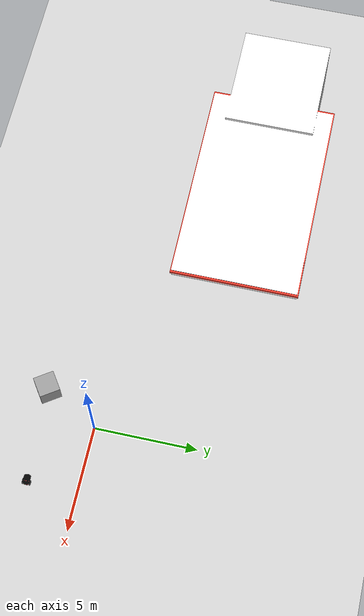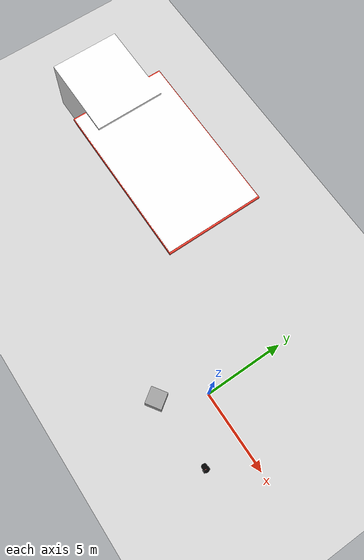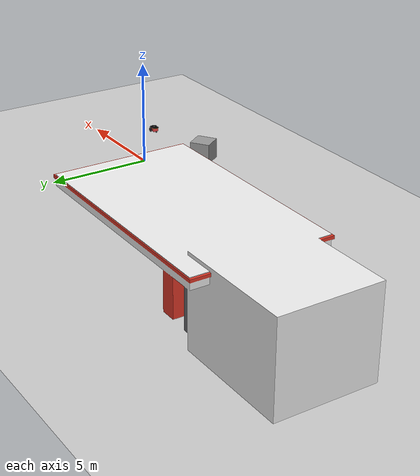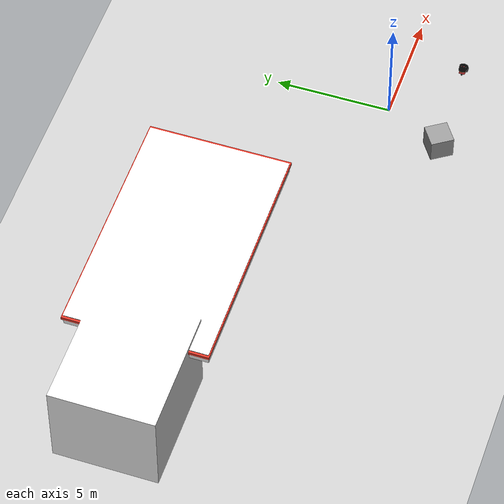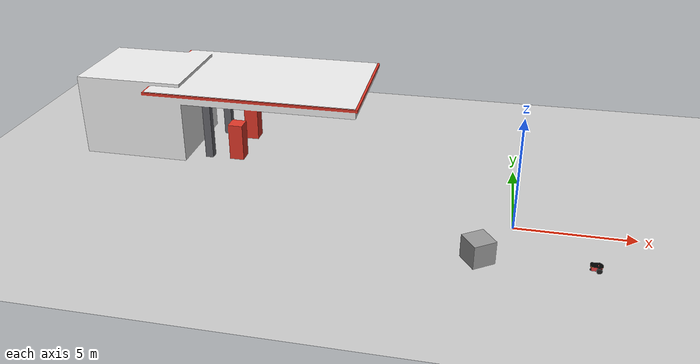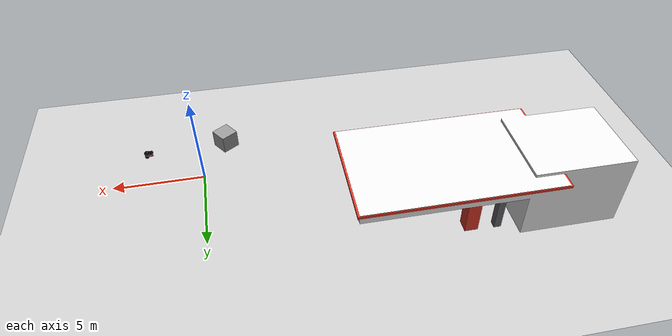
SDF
<sdf version="1.6">
 <world name="default">
  <plugin name="ros_interface_plugin" filename="librotors_gazebo_ros_interface_plugin.so"/>
  <light name="sun" type="directional">
   <pose>0 0 10 0 -0 0</pose>
   <diffuse>0.8 0.8 0.8 1</diffuse>
   <specular>0.1 0.1 0.1 1</specular>
   <attenuation>
    <range>1000</range>
    <constant>0.9</constant>
    <linear>0.01</linear>
    <quadratic>0.001</quadratic>
   </attenuation>
   <direction>-0.5 0.5 -1</direction>
  </light>
  <model name="ground_plane">
   <static>1</static>
   <link name="link">
    <collision name="collision">
     <geometry><plane><normal>0 0 1</normal><size>100 100</size></plane></geometry>
     <surface><friction><ode><mu>100</mu><mu2>50</mu2></ode></friction></surface>
    </collision>
    <visual name="visual">
     <cast_shadows>0</cast_shadows>
     <geometry><plane><normal>0 0 1</normal><size>100 100</size></plane></geometry>
     <material>
      <script><uri>file://media/materials/scripts/gazebo.material</uri><name>Gazebo/Grey</name></script>
     </material>
    </visual>
   </link>
  </model>
  <gravity>0 0 -9.8</gravity>
  <magnetic_field>6e-06 2.3e-05 -4.2e-05</magnetic_field>
  <atmosphere type="adiabatic"/>
  <physics name="default_physics" default="0" type="ode">
   <max_step_size>0.001</max_step_size>
   <real_time_factor>1</real_time_factor>
   <real_time_update_rate>1000</real_time_update_rate>
  </physics>
  <scene><ambient>0.4 0.4 0.4 1</ambient><background>0.7 0.7 0.7 1</background><shadows>1</shadows></scene>
  <spherical_coordinates>
   <surface_model>EARTH_WGS84</surface_model>
   <latitude_deg>0</latitude_deg>
   <longitude_deg>0</longitude_deg>
   <elevation>0</elevation>
   <heading_deg>0</heading_deg>
  </spherical_coordinates>
  <model name="unit_box_0">
   <pose>-1.35743 -2.59378 0.499999 -1.57079 5e-06 -2.54491</pose>
   <link name="link">
    <inertial>
     <mass>1</mass>
     <inertia>
      <ixx>0.166667</ixx>
      <ixy>0</ixy>
      <ixz>0</ixz>
      <iyy>0.166667</iyy>
      <iyz>0</iyz>
      <izz>0.166667</izz>
     </inertia>
    </inertial>
    <collision name="collision"><geometry><box><size>1 1 1</size></box></geometry></collision>
    <visual name="visual">
     <geometry><box><size>1 1 1</size></box></geometry>
     <material>
      <script><name>Gazebo/Grey</name><uri>file://media/materials/scripts/gazebo.material</uri></script>
     </material>
    </visual>
   </link>
  </model>
  <model name="pioneer2dx">
   <link name="chassis">
    <pose>0 0 0.16 0 -0 0</pose>
    <inertial>
     <mass>5</mass>
     <inertia><ixx>1</ixx><ixy>0</ixy><ixz>0</ixz><iyy>1</iyy><iyz>0</iyz><izz>1</izz></inertia>
    </inertial>
    <collision name="collision"><geometry><box><size>0.445 0.277 0.17</size></box></geometry></collision>
    <collision name="castor_collision">
     <pose>-0.2 0 -0.12 0 -0 0</pose>
     <geometry><sphere><radius>0.04</radius></sphere></geometry>
     <surface><friction><ode><mu>0</mu><mu2>0</mu2><slip1>1</slip1><slip2>1</slip2></ode></friction></surface>
    </collision>
    <visual name="visual">
     <pose>0 0 0.04 0 -0 0</pose>
     <geometry><mesh><uri>model://pioneer2dx/meshes/chassis.dae</uri><scale>1 1 1</scale></mesh></geometry>
    </visual>
    <visual name="castor_visual">
     <pose>-0.2 0 -0.12 0 -0 0</pose>
     <geometry><sphere><radius>0.04</radius></sphere></geometry>
     <material>
      <script><uri>file://media/materials/scripts/gazebo.material</uri><name>Gazebo/FlatBlack</name></script>
     </material>
    </visual>
   </link>
   <link name="right_wheel">
    <pose>0.1 -0.17 0.11 -0 1.5707 1.5707</pose>
    <inertial>
     <mass>0.1</mass>
     <inertia><ixx>1</ixx><ixy>0</ixy><ixz>0</ixz><iyy>1</iyy><iyz>0</iyz><izz>1</izz></inertia>
    </inertial>
    <collision name="collision">
     <geometry><cylinder><radius>0.11</radius><length>0.05</length></cylinder></geometry>
     <surface>
      <friction><ode><mu>100000</mu><mu2>100000</mu2><slip1>0</slip1><slip2>0</slip2></ode></friction>
     </surface>
    </collision>
    <visual name="visual">
     <geometry><cylinder><radius>0.11</radius><length>0.05</length></cylinder></geometry>
     <material>
      <script><uri>file://media/materials/scripts/gazebo.material</uri><name>Gazebo/FlatBlack</name></script>
     </material>
    </visual>
   </link>
   <link name="left_wheel">
    <pose>0.1 0.17 0.11 -0 1.5707 1.5707</pose>
    <inertial>
     <mass>0.5</mass>
     <inertia><ixx>1</ixx><ixy>0</ixy><ixz>0</ixz><iyy>1</iyy><iyz>0</iyz><izz>1</izz></inertia>
    </inertial>
    <collision name="collision">
     <geometry><cylinder><radius>0.11</radius><length>0.05</length></cylinder></geometry>
     <surface>
      <friction><ode><mu>100000</mu><mu2>100000</mu2><slip1>0</slip1><slip2>0</slip2></ode></friction>
     </surface>
    </collision>
    <visual name="visual">
     <geometry><cylinder><radius>0.11</radius><length>0.05</length></cylinder></geometry>
     <material>
      <script><uri>file://media/materials/scripts/gazebo.material</uri><name>Gazebo/FlatBlack</name></script>
     </material>
    </visual>
   </link>
   <joint name="left_wheel_hinge" type="revolute">
    <pose>0 0 -0.03 0 -0 0</pose>
    <child>left_wheel</child>
    <parent>chassis</parent>
    <axis>
     <xyz>0 1 0</xyz>
     <use_parent_model_frame>1</use_parent_model_frame>
     <limit><lower>-1e+16</lower><upper>1e+16</upper></limit>
     <dynamics><spring_reference>0</spring_reference><spring_stiffness>0</spring_stiffness></dynamics>
    </axis>
   </joint>
   <joint name="right_wheel_hinge" type="revolute">
    <pose>0 0 0.03 0 -0 0</pose>
    <child>right_wheel</child>
    <parent>chassis</parent>
    <axis>
     <xyz>0 1 0</xyz>
     <use_parent_model_frame>1</use_parent_model_frame>
     <limit><lower>-1e+16</lower><upper>1e+16</upper></limit>
     <dynamics><spring_reference>0</spring_reference><spring_stiffness>0</spring_stiffness></dynamics>
    </axis>
   </joint>
   <plugin name="diff_drive" filename="libDiffDrivePlugin.so">
    <left_joint>left_wheel_hinge</left_joint>
    <right_joint>right_wheel_hinge</right_joint>
    <torque>5</torque>
   </plugin>
   <pose>3.12396 -2.41434 -1e-06 1.9e-05 4e-06 -0.011732</pose>
  </model>
  <model name="Gas Station">
   <static>1</static>
   <link name="link">
    <collision name="collision">
     <geometry><mesh><uri>model://gas_station/meshes/gas_station.dae</uri><scale>1 1 1</scale></mesh></geometry>
    </collision>
    <visual name="visual">
     <geometry><mesh><uri>model://gas_station/meshes/gas_station.dae</uri><scale>1 1 1</scale></mesh></geometry>
     <material>
      <script>
       <uri>model://gas_station/materials/scripts</uri>
       <uri>model://gas_station/materials/textures</uri>
       <name>GasStation/Diffuse</name>
      </script>
      <shader type="normal_map_object_space"><normal_map>GasStation_Normal.png</normal_map></shader>
     </material>
    </visual>
   </link>
   <pose>-14.531 5.1778 0 0 -0 0</pose>
  </model>
 </world>
</sdf>
